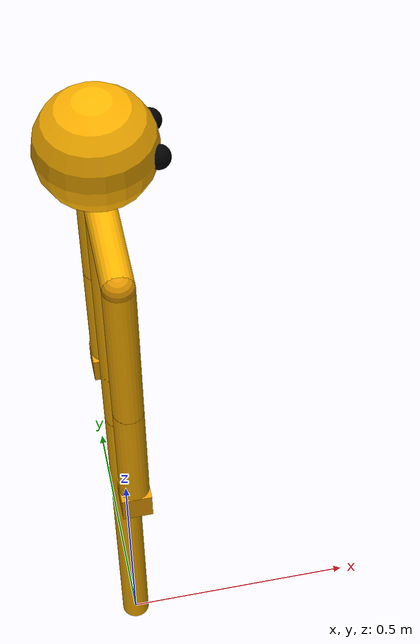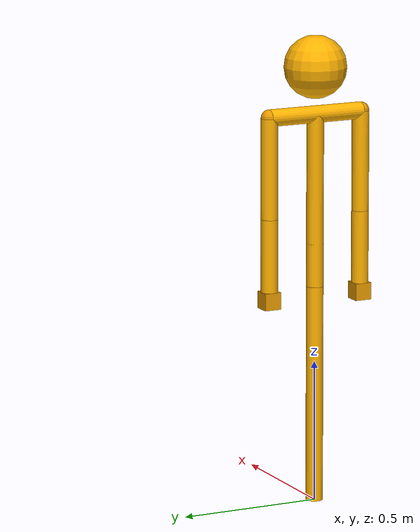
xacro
<?xml version="1.0"?>
<robot xmlns:xacro="http://www.ros.org/wiki/xacro" name="human">

    <!-- User-settable parameters (eg, xacro human-tpl.xacro id:=xyz) -->
    <xacro:property name="id" value="$(arg id)" />
    <xacro:property name="height" value="$(arg height)" />

    <!-- Parameters defaults -->
    <xacro:arg name="id" default="default" />
    <xacro:arg name="height" default="1.65" />

    <!-- human body proportions taken from https://www.thedrawingsource.com/figure-drawing-proportions.html -->
    <xacro:property name="size_unit" value="${height/7.5}" />
    <xacro:property name="head_radius" value="${size_unit/2}" />
    <xacro:property name="neck_length" value="${size_unit * 0.25}" />
    <xacro:property name="neck_shoulder_length" value="${size_unit*0.8}" />
    <xacro:property name="upperarm_length" value="${size_unit*1.6}" />
    <xacro:property name="forearm_length" value="${size_unit*1.3}" />
    <xacro:property name="torso_height" value="${size_unit*2.75}" />
    <xacro:property name="waist_length" value="${size_unit*1.2}" />
    <xacro:property name="tight_length" value="${size_unit*1.5}" />
    <xacro:property name="tibia_length" value="${size_unit*2}" />
    <xacro:property name="leg_length" value="${size_unit*2 + size_unit*1.5}" />

    <xacro:property name="limb_radius" value="0.03" />
    <xacro:property name="hand_size" value="${limb_radius*2}" />

    <!-- Materials -->
    <material name="yellow-skin">
        <color rgba="1 0.7 0 1" />
    </material>

    <material name="yellow-skin-dark">
        <color rgba="0.9 0.6 0 1" />
    </material>

    <material name="black">
        <color rgba="0 0 0 1" />
    </material>

    <!-- Ground link -->
    <link name="world" />

    <link name="fixed_leg_${id}">
        <visual>
            <geometry>
                <cylinder length="${leg_length}" radius="${limb_radius}" />
            </geometry>
            <material name="yellow-skin" />
            <origin rpy="0 0 0" xyz="0 0 ${leg_length / 2}" />
        </visual>
        <collision>
            <geometry>
                <cylinder length="${leg_length}" radius="${limb_radius}" />
            </geometry>
            <origin rpy="0 0 0" xyz="0 0 ${leg_length / 2}" />
        </collision>
    </link>

    <joint name="fixed_leg_joint_${id}" type="fixed">
        <parent link="world" />
        <child link="fixed_leg_${id}" />
        <origin rpy="0 0 0" xyz="0 0 0" />
    </joint>

    <link name="leg_${id}">
        <visual>
            <geometry>
                <sphere radius="${limb_radius}"/>
            </geometry>
            <material name="yellow-skin" />
            <origin rpy="0 0 0" xyz="0 0 0" />
        </visual>
        <collision>
            <geometry>
                <sphere radius="${limb_radius}"/>
            </geometry>
            <origin rpy="0 0 0" xyz="0 0 0" />
        </collision>
    </link>

    <joint name="leg_crouch_joint_${id}" type="prismatic">
        <parent link="fixed_leg_${id}" />
        <child link="leg_${id}" />
        <axis xyz="0 0 1" />
        <limit effort="1000.0" lower="-0.5" upper="0.0" velocity="0.5" />
        <origin rpy="0 0 0" xyz="0 0 ${leg_length}" />
    </joint>

    <link name="waist_${id}">
    </link>

    <link name="waist_intermediate_${id}">
    </link>

    <link name="torso_${id}">
        <visual>
            <geometry>
                <cylinder length="${torso_height}" radius="${limb_radius}"/>
            </geometry>
            <material name="yellow-skin" />
            <origin rpy="0 0 0" xyz="0 0 -${torso_height / 2}" />
        </visual>
        <collision>
            <geometry>
                <cylinder length="${torso_height}" radius="${limb_radius}"/>
            </geometry>
            <origin rpy="0 0 0" xyz="0 0 -${torso_height / 2}" />
        </collision>

        <visual>
            <geometry>
                <cylinder length="${2 * neck_shoulder_length}" radius="${limb_radius}"/>
            </geometry>
            <material name="yellow-skin" />
            <origin rpy="${pi / 2} 0 0" xyz="0 0 0" />
        </visual>
        <collision>
            <geometry>
                <cylinder length="${2 * neck_shoulder_length}" radius="${limb_radius}"/>
            </geometry>
            <origin rpy="${pi / 2} 0 0" xyz="0 0 0" />
        </collision>

        <visual>
            <geometry>
                <sphere radius="${limb_radius}"/>
            </geometry>
            <material name="yellow-skin" />
            <origin rpy="0 0 0" xyz="0 0 -${3 * torso_height / 4}" />
        </visual>
        <collision>
            <geometry>
                <sphere radius="${limb_radius}"/>
            </geometry>
            <origin rpy="0 0 0" xyz="0 0 -${3 * torso_height / 4}" />
        </collision>
    </link>

    <joint name="torso_${id}" type="fixed">
        <parent link="waist_${id}"/>
        <child link="torso_${id}"/>
        <origin rpy="0 0 0" xyz="0 0 ${torso_height}" />
    </joint>

    <joint name="waist_rot_${id}" type="revolute">
        <axis xyz="0 0 1" />
        <limit effort="1000" lower="-.4" upper="0.4" velocity="0.5" />
        <parent link="leg_${id}"/>
        <child link="waist_intermediate_${id}"/>
        <origin rpy="0 0 0" xyz="0 0 0" />
    </joint>

    <joint name="waist_bend_${id}" type="revolute">
        <axis xyz="0 1 0" />
        <limit effort="1000" lower="-.2" upper="1." velocity="0.5" />
        <parent link="waist_intermediate_${id}"/>
        <child link="waist_${id}"/>
        <origin rpy="0 0 0" xyz="0 0 0" />
    </joint>

    <link name="r_head_${id}">
    </link>
    <link name="y_head_${id}">
    </link>
    <link name="p_head_${id}">
    </link>

    <link name="head_${id}">
        <visual>
            <geometry>
                <sphere radius="${head_radius}"/>
            </geometry>
            <material name="yellow-skin" />
            <origin rpy="0 0 0" xyz="${-head_radius/2} 0 0" />
        </visual>
        <collision>
            <geometry>
                <sphere radius="${head_radius}"/>
            </geometry>
            <origin rpy="0 0 0" xyz="${-head_radius/2} 0 0" />
        </collision>
        <!-- eyes -->
        <visual>
            <geometry>
                <sphere radius="${head_radius/5}"/>
            </geometry>
            <material name="black" />
            <origin rpy="0 0 0" xyz="${head_radius * .9 - head_radius/2} ${2*head_radius/5} 0" />
        </visual>
        <visual>
            <geometry>
                <sphere radius="${head_radius/5}"/>
            </geometry>
            <material name="black" />
            <origin rpy="0 0 0" xyz="${head_radius * .9 - head_radius/2} -${2*head_radius/5} 0" />
        </visual>
    </link>
    <joint name="r_head_${id}" type="revolute">
        <axis xyz="1 0 0" />
        <limit effort="1000" lower="-1." upper="1." velocity="0.5" />
        <parent link="torso_${id}"/>
        <child link="r_head_${id}"/>
        <origin rpy="0 0 0" xyz="0 0 ${neck_length}" />
    </joint>
    <joint name="y_head_${id}" type="revolute">
        <axis xyz="0 0 1" />
        <limit effort="1000" lower="-1.4" upper="1.4" velocity="0.5" />
        <parent link="r_head_${id}"/>
        <child link="y_head_${id}"/>
        <origin rpy="0 0 0" xyz="0 0 0" />
    </joint>
    <joint name="p_head_${id}" type="revolute">
        <axis xyz="0 -1 0" />
        <limit effort="1000" lower="-1.5" upper="1.5" velocity="0.5" />
        <parent link="y_head_${id}"/>
        <child link="p_head_${id}"/>
        <origin rpy="0 0 0" xyz="0 0 0" />
    </joint>
    <joint name="head_${id}" type="fixed">
        <parent link="p_head_${id}"/>
        <child link="head_${id}"/>
        <origin rpy="0 0 0" xyz="${head_radius/2} 0 ${head_radius}" />
    </joint>

    <xacro:macro name="limb_segment" params="name reflect length parent attachment_origin attachment_rotation joint_name joint_axis joint_min_limit joint_max_limit">
        <link name="${name}">
            <visual>
                <geometry>
                    <cylinder length="${length}" radius="${limb_radius}"/>
                </geometry>
                <material name="yellow-skin" />
                <origin rpy="0 0 0" xyz="0 0 -${length/2}" />
            </visual>
            <collision>
                <geometry>
                    <cylinder length="${length}" radius="${limb_radius}"/>
                </geometry>
                <origin rpy="0 0 0" xyz="0 0 -${length/2}" />
            </collision>

            <visual>
                <geometry>
                    <sphere radius="${limb_radius}"/>
                </geometry>
                <material name="yellow-skin" />
                <origin rpy="0 0 0" xyz="0 0 -${length}" />
            </visual>
            <collision>
                <geometry>
                    <sphere radius="${limb_radius}"/>
                </geometry>
                <origin rpy="0 0 0" xyz="0 0 -${length}" />
            </collision>
        </link>

        <joint name="${joint_name}" type="revolute">
            <axis xyz="${joint_axis}" />
            <limit effort="1000" lower="${joint_min_limit}" upper="${joint_max_limit}" velocity="0.5" />
            <parent link="${parent}"/>
            <child link="${name}"/>
            <origin rpy="${attachment_rotation}" xyz="${attachment_origin}" />
        </joint>
    </xacro:macro>

    <xacro:macro name="arm" params="suffix parent reflect">
        <link name="${suffix}_y_shoulder_${id}">
            <visual>
                <geometry>
                    <sphere radius="${limb_radius}"/>
                </geometry>
                <material name="yellow-skin-dark" />
                <origin rpy="0 0 0" xyz="0 0 0" />
            </visual>
            <collision>
                <geometry>
                    <sphere radius="${limb_radius}"/>
                </geometry>
                <origin rpy="0 0 0" xyz="0 0 0" />
            </collision>
        </link>
        <joint name="${suffix}_y_shoulder_${id}" type="revolute">
            <axis xyz="0 0 ${reflect * -1}" />
            <limit effort="1000" lower="-1.1" upper="1.9" velocity="0.5" />
            <parent link="${parent}"/>
            <child link="${suffix}_y_shoulder_${id}"/>
            <origin rpy="0 0 0" xyz="0 ${reflect * neck_shoulder_length} 0" />
        </joint>
        <link name="${suffix}_p_shoulder_${id}">
        </link>
        <joint name="${suffix}_p_shoulder_${id}" type="revolute">
            <axis xyz="${reflect} 0 0" />
            <limit effort="1000" lower="-0.4" upper="3.3" velocity="0.5" />
            <parent link="${suffix}_y_shoulder_${id}"/>
            <child link="${suffix}_p_shoulder_${id}"/>
            <origin rpy="0 0 0" xyz="0 0 0" />
        </joint>
        <xacro:limb_segment name="${suffix}_shoulder_${id}"
                     length = "${upperarm_length}"
                     reflect="${reflect}"
                     parent="${suffix}_p_shoulder_${id}"
                     attachment_origin="0 0 0"
                     attachment_rotation="0 0 0"
                     joint_name="${suffix}_r_shoulder_${id}"
                     joint_axis="0 -1 0"
                     joint_min_limit="-1.7"
                     joint_max_limit="1.5" />
         <xacro:limb_segment name="${suffix}_elbow_${id}"
                     length = "${forearm_length}"
                     reflect="${reflect}"
                     parent="${suffix}_shoulder_${id}"
                     attachment_origin="0 0 -${upperarm_length}"
                     attachment_rotation="0 0 0"
                     joint_name="${suffix}_elbow_${id}"
                     joint_axis="0 -1 0"
                     joint_min_limit="0"
                     joint_max_limit="2.5" />

        <link name="${suffix}_wrist_${id}">
        </link>

        <joint name="${suffix}_wrist_${id}" type="fixed">
            <parent link="${suffix}_elbow_${id}"/>
            <child link="${suffix}_wrist_${id}"/>
            <origin rpy="0 0 0" xyz="0 0 -${forearm_length}" />
        </joint>

        <link name="${suffix}_wrist_intermediate_r_${id}">
        </link>

        <joint name="${suffix}_wrist_r_${id}" type="revolute">
            <axis xyz="0 1 0" />
            <limit effort="1000" lower="-0.4" upper="0.4" velocity="0.5" />
            <parent link="${suffix}_wrist_${id}" />
            <child link="${suffix}_wrist_intermediate_r_${id}" />
            <origin rpy="0 ${pi / 2} 0" xyz="0 0 0" />
        </joint>

        <link name="${suffix}_wrist_intermediate_y_${id}">
        </link>

        <joint name="${suffix}_wrist_y_${id}" type="revolute">
            <axis xyz="0 0 1" />
            <limit effort="1000" lower="-0.2" upper="0.2" velocity="0.5" />
            <parent link="${suffix}_wrist_intermediate_r_${id}" />
            <child link="${suffix}_wrist_intermediate_y_${id}" />
            <origin rpy="0 0 0" xyz="0 0 0" />
        </joint>

        <link name="${suffix}_wrist_intermediate_fixed_${id}">
            <visual>
                <geometry>
                    <box size="${hand_size} ${hand_size} ${hand_size}" />
                </geometry>
                <material name="yellow-skin-dark" />
                <origin rpy="0 0 0" xyz="0 0 0" />
            </visual>
            <collision>
                <geometry>
                    <box size="${hand_size} ${hand_size} ${hand_size}" />
                </geometry>
                <origin rpy="0 0 0" xyz="0 0 0" />
            </collision>
        </link>

        <joint name="${suffix}_wrist_intermediate_fixed_${id}" type="prismatic">
            <parent link="${suffix}_wrist_intermediate_y_${id}" />
            <child link="${suffix}_wrist_intermediate_fixed_${id}" />
            <axis xyz="1 0 0" />
            <origin rpy="0 0 0" xyz="0 0 0" />
            <limit effort="1000.0" lower="0.0" upper="0.001" velocity="0.5" />
        </joint>
    </xacro:macro>

    <xacro:arm suffix="l" reflect="1" parent="torso_${id}" />
    <xacro:arm suffix="r" reflect="-1" parent="torso_${id}" />

</robot>
